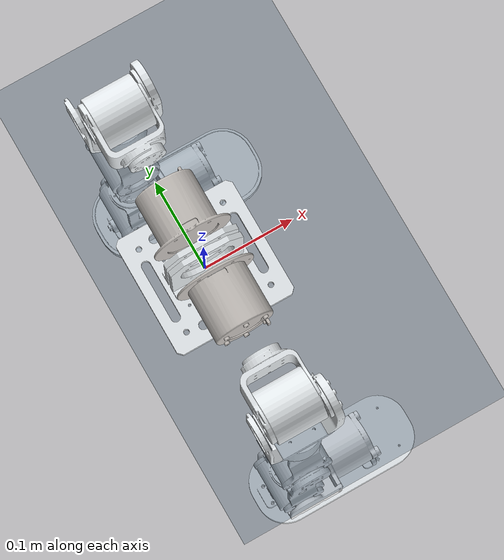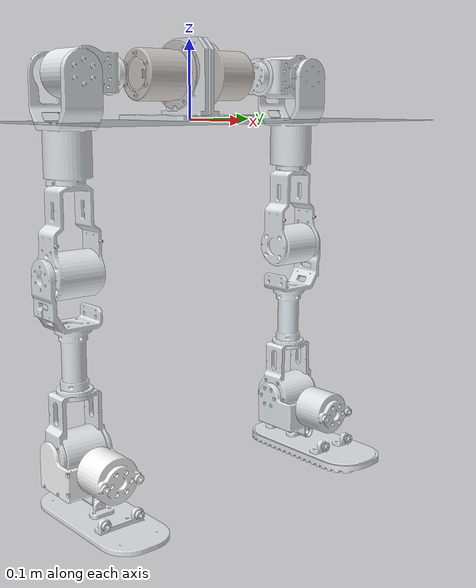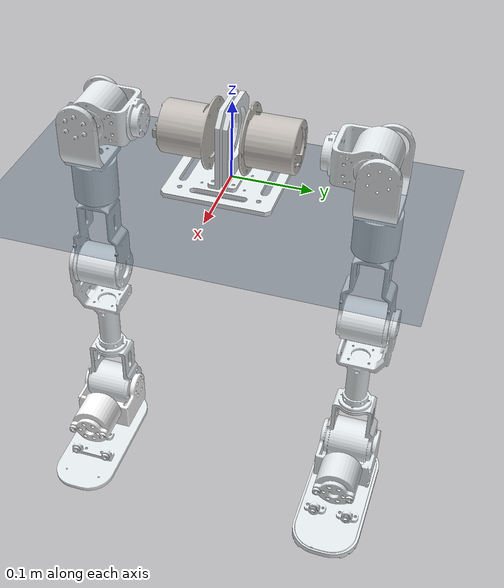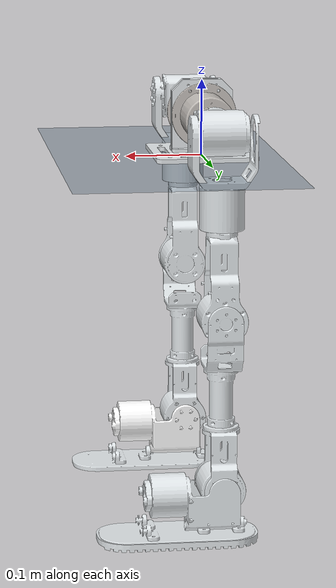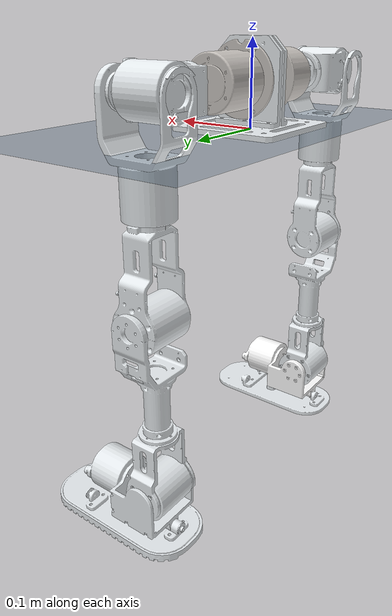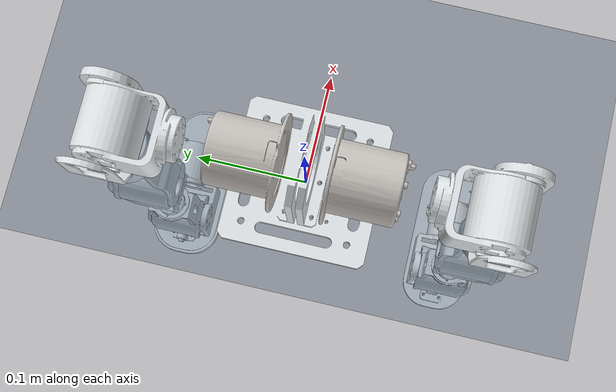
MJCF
<?xml version='1.0' encoding='utf-8'?>
<mujoco model="legs_URDF">
  <compiler angle="radian" meshdir="../meshes" />
  <asset>
    <mesh name="base_link" content_type="model/stl" file="base_link.STL" />
    <mesh name="Link_R0" content_type="model/stl" file="Link_R0.STL" />
    <mesh name="Link_R1" content_type="model/stl" file="Link_R1.STL" />
    <mesh name="Link_R2" content_type="model/stl" file="Link_R2.STL" />
    <mesh name="Link_R3" content_type="model/stl" file="Link_R3.STL" />
    <mesh name="Link_R4" content_type="model/stl" file="Link_R4.STL" />
    <mesh name="Link_R5" content_type="model/stl" file="Link_R5.STL" />
    <mesh name="Link_R6" content_type="model/stl" file="Link_R6.STL" />
    <mesh name="Link_L0" content_type="model/stl" file="Link_L0.STL" />
    <mesh name="Link_L1" content_type="model/stl" file="Link_L1.STL" />
    <mesh name="Link_L2" content_type="model/stl" file="Link_L2.STL" />
    <mesh name="Link_L3" content_type="model/stl" file="Link_L3.STL" />
    <mesh name="Link_L4" content_type="model/stl" file="Link_L4.STL" />
    <mesh name="Link_L5" content_type="model/stl" file="Link_L5.STL" />
    <mesh name="Link_L6" content_type="model/stl" file="Link_L6.STL" />
    <texture type="skybox" builtin="flat" rgb1="0 0 0" rgb2="0 0 0" width="512" height="3072" />
    <texture type="2d" name="groundplane" builtin="checker" mark="edge" rgb1="0.2 0.3 0.4" rgb2="0.1 0.2 0.3" markrgb="0.8 0.8 0.8" width="300" height="300" />
    <material name="groundplane" texture="groundplane" texuniform="true" texrepeat="5 5" reflectance="0.2" />
  </asset>
  <worldbody>
    <body name="base_link">
      <freejoint name="base_freejoint" />
      <site name="imu" pos="0 0 0" quat="1 0 0 0" group="3" />
      <inertial pos="0 0 0.0074869" quat="0 0.707107 0 0.707107" mass="0.618862" diaginertia="0.0025168 0.0014718 0.00137492" />
      <geom type="mesh" contype="0" conaffinity="0" group="1" density="0" rgba="0.898039 0.917647 0.929412 1" mesh="base_link" />
      <geom type="mesh" rgba="0.898039 0.917647 0.929412 1" mesh="base_link" />
      <body name="Link_R0" pos="0 -0.021 0.055">
        <inertial pos="3.4387e-05 -0.0297324 5.27257e-05" quat="-0.0266127 0.697188 -0.150653 0.700374" mass="0.735666" diaginertia="0.000502082 0.000497795 0.000492117" />
        <geom type="mesh" contype="0" conaffinity="0" group="1" density="0" rgba="0.776471 0.756863 0.737255 1" mesh="Link_R0" />
        <geom type="mesh" rgba="0.776471 0.756863 0.737255 1" mesh="Link_R0" />
        <body name="Link_R1" pos="0 -0.06025 0">
          <inertial pos="-0.00137885 -0.0795199 7.09403e-05" quat="0.626059 0.332188 -0.623537 0.330004" mass="0.553009" diaginertia="0.000364406 0.000313778 0.000262306" />
          <joint name="joint_R1" pos="0 0 0" axis="0 1 0" range="-3.14 1.05" />
          <geom type="mesh" contype="0" conaffinity="0" group="1" density="0" rgba="0.898039 0.917647 0.929412 1" mesh="Link_R1" />
          <geom type="mesh" rgba="0.898039 0.917647 0.929412 1" mesh="Link_R1" />
          <body name="Link_R2" pos="0 -0.0987 0">
            <inertial pos="0.0045774 -2.10584e-08 -0.0743865" quat="0.661473 0.249883 0.249877 0.661494" mass="0.545982" diaginertia="0.000398937 0.000344958 0.000278266" />
            <joint name="joint_R2" pos="0 0 0" axis="1 0 0" range="-3.14 0.26" />
            <geom type="mesh" contype="0" conaffinity="0" group="1" density="0" rgba="0.898039 0.917647 0.929412 1" mesh="Link_R2" />
            <geom type="mesh" rgba="0.898039 0.917647 0.929412 1" mesh="Link_R2" />
            <body name="Link_R3" pos="0 0 -0.1215">
              <inertial pos="4.7413e-07 0.000108528 -0.0958044" quat="0.995663 0.0930341 9.8938e-07 8.95192e-07" mass="0.520786" diaginertia="0.000424308 0.000351138 0.000267208" />
              <joint name="joint_R3" pos="0 0 0" axis="0 0 1" range="-2.75 2.75" />
              <geom type="mesh" contype="0" conaffinity="0" group="1" density="0" rgba="0.898039 0.917647 0.929412 1" mesh="Link_R3" />
              <geom type="mesh" rgba="0.898039 0.917647 0.929412 1" mesh="Link_R3" />
              <body name="Link_R4" pos="0 0 -0.112">
                <inertial pos="-5.09366e-07 -0.00246397 -0.140553" quat="0.992516 0.122118 1.12358e-06 8.8423e-06" mass="0.855158" diaginertia="0.000547451 0.000497228 0.000379082" />
                <joint name="joint_R4" pos="0 0 0" axis="0 -1 0" range="-1.92 0" />
                <geom type="mesh" contype="0" conaffinity="0" group="1" density="0" rgba="0.898039 0.917647 0.929412 1" mesh="Link_R4" />
                <geom type="mesh" rgba="0.898039 0.917647 0.929412 1" mesh="Link_R4" />
                <body name="Link_R5" pos="0 0 -0.221">
                  <inertial pos="0.0605483 0.00290493 -0.00302123" quat="0.930647 -0.115683 0.225284 0.264121" mass="0.404874" diaginertia="0.000187455 0.000172356 0.000159107" />
                  <joint name="joint_R5" pos="0 0 0" axis="0 1 0" range="-0.79 0.79" />
                  <geom type="mesh" contype="0" conaffinity="0" group="1" density="0" rgba="1 1 1 1" mesh="Link_R5" />
                  <geom type="mesh" rgba="1 1 1 1" mesh="Link_R5" />
                  <body name="Link_R6" pos="0 0 -0.055093">
                    <inertial pos="0.0523825 1.45544e-05 -0.00562617" quat="0 0.707049 0 0.707165" mass="0.300297" diaginertia="0.000917251 0.000772813 0.000147367" />
                    <joint name="joint_R6" pos="0 0 0" axis="1 0 0" range="-0.35 0.35" />
                    <geom type="mesh" contype="0" conaffinity="0" group="1" density="0" rgba="0.898039 0.917647 0.929412 1" mesh="Link_R6" />
                    <geom type="mesh" rgba="0.898039 0.917647 0.929412 1" mesh="Link_R6" />
                  </body>
                </body>
              </body>
            </body>
          </body>
        </body>
      </body>
      <body name="Link_L0" pos="0 0.021 0.055">
        <inertial pos="3.4387e-05 0.0286962 -5.27257e-05" quat="-0.150653 0.700374 -0.0266127 0.697188" mass="0.735666" diaginertia="0.000502082 0.000497795 0.000492117" />
        <geom type="mesh" contype="0" conaffinity="0" group="1" density="0" rgba="0.776471 0.756863 0.737255 1" mesh="Link_L0" />
        <geom type="mesh" rgba="0.776471 0.756863 0.737255 1" mesh="Link_L0" />
        <body name="Link_L1" pos="0 0.06025 0">
          <inertial pos="-0.00144777 0.0795199 7.09464e-05" quat="0.332185 0.626055 -0.330007 0.623541" mass="0.553009" diaginertia="0.000364406 0.000313778 0.000262306" />
          <joint name="joint_L1" pos="0 0 0" axis="0 1 0" range="-3.14 1.04" />
          <geom type="mesh" contype="0" conaffinity="0" group="1" density="0" rgba="0.898039 0.917647 0.929412 1" mesh="Link_L1" />
          <geom type="mesh" rgba="0.898039 0.917647 0.929412 1" mesh="Link_L1" />
          <body name="Link_L2" pos="0 0.0987 0">
            <inertial pos="0.0044774 -2.10585e-08 -0.0743865" quat="0.661473 0.249883 0.249877 0.661494" mass="0.545982" diaginertia="0.000398937 0.000344958 0.000278266" />
            <joint name="joint_L2" pos="0 0 0" axis="1 0 0" range="-0.26 3.14" />
            <geom type="mesh" contype="0" conaffinity="0" group="1" density="0" rgba="0.898039 0.917647 0.929412 1" mesh="Link_L2" />
            <geom type="mesh" rgba="0.898039 0.917647 0.929412 1" mesh="Link_L2" />
            <body name="Link_L3" pos="-0.0001 0 -0.1215">
              <inertial pos="2.41953e-08 -0.000108087 -0.0958044" quat="0.995663 -0.0930341 2.14463e-06 -3.26255e-05" mass="0.520786" diaginertia="0.000424308 0.000351138 0.000267208" />
              <joint name="joint_L3" pos="0 0 0" axis="0 0 1" range="-2.75 2.75" />
              <geom type="mesh" contype="0" conaffinity="0" group="1" density="0" rgba="0.898039 0.917647 0.929412 1" mesh="Link_L3" />
              <geom type="mesh" rgba="0.898039 0.917647 0.929412 1" mesh="Link_L3" />
              <body name="Link_L4" pos="0 0 -0.112">
                <inertial pos="1.5314e-07 0.00246352 -0.140553" quat="0.992516 -0.122118 2.98776e-06 -2.45733e-05" mass="0.855158" diaginertia="0.000547451 0.000497228 0.000379082" />
                <joint name="joint_L4" pos="0 0 0" axis="6.7336e-05 1 0" range="0 1.92" />
                <geom type="mesh" contype="0" conaffinity="0" group="1" density="0" rgba="0.898039 0.917647 0.929412 1" mesh="Link_L4" />
                <geom type="mesh" rgba="0.898039 0.917647 0.929412 1" mesh="Link_L4" />
                <body name="Link_L5" pos="0 0 -0.221">
                  <inertial pos="0.0605625 -0.00352364 -0.00302125" quat="0.930643 0.115678 0.225283 -0.264138" mass="0.404875" diaginertia="0.000187456 0.000172356 0.000159107" />
                  <joint name="joint_L5" pos="0 0 0" axis="-6.7336e-05 -1 0" range="-0.79 0.79" />
                  <geom type="mesh" contype="0" conaffinity="0" group="1" density="0" rgba="0.898039 0.917647 0.929412 1" mesh="Link_L5" />
                  <geom type="mesh" rgba="0.898039 0.917647 0.929412 1" mesh="Link_L5" />
                  <body name="Link_L6" pos="0.00010073 0 -0.055093">
                    <inertial pos="0.0522817 -0.000738971 -0.00562618" quat="2.41479e-05 0.707049 -2.41519e-05 0.707165" mass="0.300297" diaginertia="0.000917251 0.000772813 0.000147367" />
                    <joint name="joint_L6" pos="0 0 0" axis="-1 2.2387e-05 0" range="-0.35 0.35" />
                    <geom type="mesh" contype="0" conaffinity="0" group="1" density="0" rgba="0.898039 0.917647 0.929412 1" mesh="Link_L6" />
                    <geom type="mesh" rgba="0.898039 0.917647 0.929412 1" mesh="Link_L6" />
                  </body>
                </body>
              </body>
            </body>
          </body>
        </body>
      </body>
    </body>
    <light pos="1 0 3.5" dir="0 0 -1" directional="true" />
    <geom name="floor" size="0 0 0.05" type="plane" material="groundplane" />
  </worldbody>
  <actuator>
    <motor name="joint_R1" joint="joint_R1" forcerange="-27 27" />
    <motor name="joint_R2" joint="joint_R2" forcerange="-27 27" />
    <motor name="joint_R3" joint="joint_R3" forcerange="-27 27" />
    <motor name="joint_R4" joint="joint_R4" forcerange="-27 27" />
    <motor name="joint_R5" joint="joint_R5" forcerange="-7 7" />
    <motor name="joint_R6" joint="joint_R6" forcerange="-7 7" />
    <motor name="joint_L1" joint="joint_L1" forcerange="-27 27" />
    <motor name="joint_L2" joint="joint_L2" forcerange="-27 27" />
    <motor name="joint_L3" joint="joint_L3" forcerange="-27 27" />
    <motor name="joint_L4" joint="joint_L4" forcerange="-27 27" />
    <motor name="joint_L5" joint="joint_L5" forcerange="-7 7" />
    <motor name="joint_L6" joint="joint_L6" forcerange="-7 7" />
  </actuator>
  <sensor>
    <jointpos name="joint_L1_pos" joint="joint_L1" />
    <jointpos name="joint_L2_pos" joint="joint_L2" />
    <jointpos name="joint_L3_pos" joint="joint_L3" />
    <jointpos name="joint_L4_pos" joint="joint_L4" />
    <jointpos name="joint_L5_pos" joint="joint_L5" />
    <jointpos name="joint_L6_pos" joint="joint_L6" />
    <jointpos name="joint_R1_pos" joint="joint_R1" />
    <jointpos name="joint_R2_pos" joint="joint_R2" />
    <jointpos name="joint_R3_pos" joint="joint_R3" />
    <jointpos name="joint_R4_pos" joint="joint_R4" />
    <jointpos name="joint_R5_pos" joint="joint_R5" />
    <jointpos name="joint_R6_pos" joint="joint_R6" />
    <jointvel name="joint_L1_vel" joint="joint_L1" />
    <jointvel name="joint_L2_vel" joint="joint_L2" />
    <jointvel name="joint_L3_vel" joint="joint_L3" />
    <jointvel name="joint_L4_vel" joint="joint_L4" />
    <jointvel name="joint_L5_vel" joint="joint_L5" />
    <jointvel name="joint_L6_vel" joint="joint_L6" />
    <jointvel name="joint_R1_vel" joint="joint_R1" />
    <jointvel name="joint_R2_vel" joint="joint_R2" />
    <jointvel name="joint_R3_vel" joint="joint_R3" />
    <jointvel name="joint_R4_vel" joint="joint_R4" />
    <jointvel name="joint_R5_vel" joint="joint_R5" />
    <jointvel name="joint_R6_vel" joint="joint_R6" />
    <jointactuatorfrc name="joint_L1_torque" joint="joint_L1" />
    <jointactuatorfrc name="joint_L2_torque" joint="joint_L2" />
    <jointactuatorfrc name="joint_L3_torque" joint="joint_L3" />
    <jointactuatorfrc name="joint_L4_torque" joint="joint_L4" />
    <jointactuatorfrc name="joint_L5_torque" joint="joint_L5" />
    <jointactuatorfrc name="joint_L6_torque" joint="joint_L6" />
    <jointactuatorfrc name="joint_R1_torque" joint="joint_R1" />
    <jointactuatorfrc name="joint_R2_torque" joint="joint_R2" />
    <jointactuatorfrc name="joint_R3_torque" joint="joint_R3" />
    <jointactuatorfrc name="joint_R4_torque" joint="joint_R4" />
    <jointactuatorfrc name="joint_R5_torque" joint="joint_R5" />
    <jointactuatorfrc name="joint_R6_torque" joint="joint_R6" />
    <framequat name="imu_quat" objtype="site" objname="imu" />
    <gyro name="imu_gyro" site="imu" />
    <accelerometer name="imu_acc" site="imu" />
    <framepos name="frame_pos" objtype="site" objname="imu" />
    <framelinvel name="frame_vel" objtype="site" objname="imu" />
  </sensor>
</mujoco>
